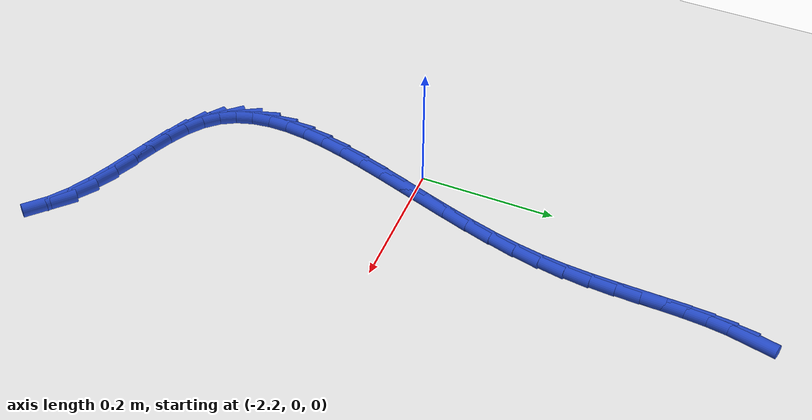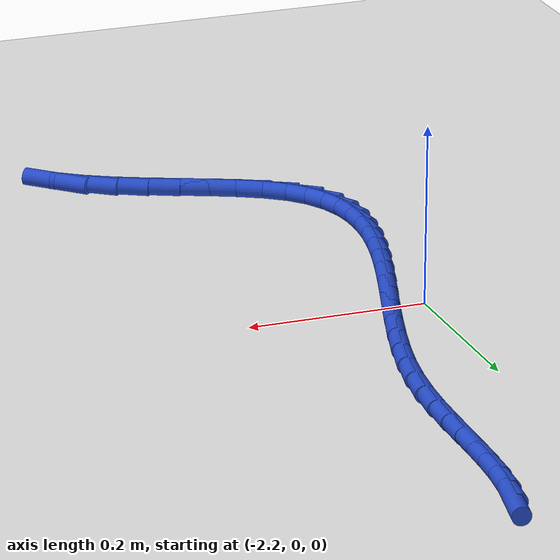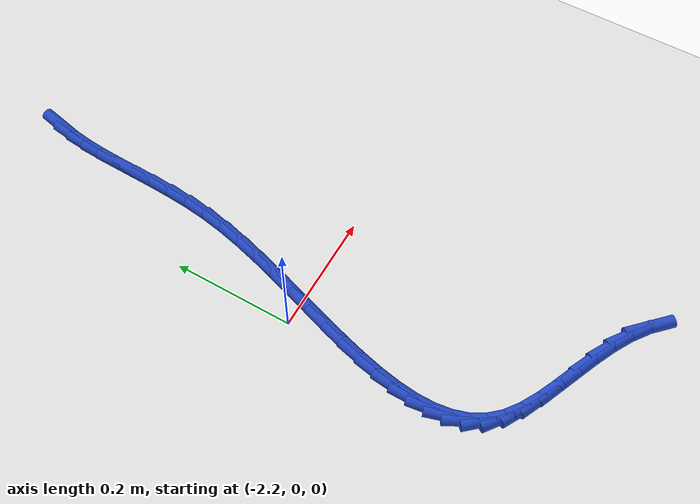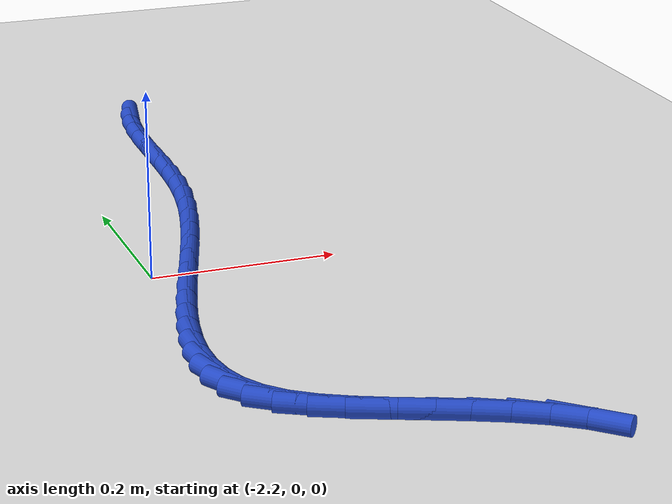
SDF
<sdf version="1.6">
 <world name="default">
  <model name="ground_plane">
   <static>1</static>
   <link name="link">
    <collision name="collision">
     <geometry><plane><normal>0 0 1</normal><size>100 100</size></plane></geometry>
     <surface><friction><ode><mu>100</mu><mu2>50</mu2></ode></friction></surface>
    </collision>
    <visual name="visual">
     <cast_shadows>0</cast_shadows>
     <geometry><plane><normal>0 0 1</normal><size>100 100</size></plane></geometry>
     <material>
      <script><uri>file://media/materials/scripts/gazebo.material</uri><name>Gazebo/WhiteGlow</name></script>
     </material>
    </visual>
   </link>
  </model>
  <model name="line">
   <link name="link_90">
    <pose>-2.079892184102288 0.5171115539165557 0.01 0 1.57 1.3632791009786671</pose>
    <collision name="collision">
     <geometry><cylinder><radius>0.01</radius><length>0.08</length></cylinder></geometry>
    </collision>
    <visual name="visual">
     <material>
      <script><name>Gazebo/Blue</name><uri>file://media/materials/scripts/gazebo.material</uri></script>
     </material>
     <geometry><cylinder><radius>0.01</radius><length>0.08</length></cylinder></geometry>
    </visual>
   </link>
   <link name="link_91">
    <pose>-2.086155965197611 0.48736169271048596 0.01 0 1.57 1.4418927126917094</pose>
    <collision name="collision">
     <geometry><cylinder><radius>0.01</radius><length>0.08</length></cylinder></geometry>
    </collision>
    <visual name="visual">
     <material>
      <script><name>Gazebo/Blue</name><uri>file://media/materials/scripts/gazebo.material</uri></script>
     </material>
     <geometry><cylinder><radius>0.01</radius><length>0.08</length></cylinder></geometry>
    </visual>
   </link>
   <link name="link_92">
    <pose>-2.0901623549415267 0.45645352225317914 0.01 0 1.57 1.498313127249006</pose>
    <collision name="collision">
     <geometry><cylinder><radius>0.01</radius><length>0.08</length></cylinder></geometry>
    </collision>
    <visual name="visual">
     <material>
      <script><name>Gazebo/Blue</name><uri>file://media/materials/scripts/gazebo.material</uri></script>
     </material>
     <geometry><cylinder><radius>0.01</radius><length>0.08</length></cylinder></geometry>
    </visual>
   </link>
   <link name="link_93">
    <pose>-2.092485920995472 0.4244530663168874 0.01 0 1.57 1.5340151382224891</pose>
    <collision name="collision">
     <geometry><cylinder><radius>0.01</radius><length>0.08</length></cylinder></geometry>
    </collision>
    <visual name="visual">
     <material>
      <script><name>Gazebo/Blue</name><uri>file://media/materials/scripts/gazebo.material</uri></script>
     </material>
     <geometry><cylinder><radius>0.01</radius><length>0.08</length></cylinder></geometry>
    </visual>
   </link>
   <link name="link_94">
    <pose>-2.0937012310208813 0.3914263486738614 0.01 0 1.57 1.550743624757005</pose>
    <collision name="collision">
     <geometry><cylinder><radius>0.01</radius><length>0.08</length></cylinder></geometry>
    </collision>
    <visual name="visual">
     <material>
      <script><name>Gazebo/Blue</name><uri>file://media/materials/scripts/gazebo.material</uri></script>
     </material>
     <geometry><cylinder><radius>0.01</radius><length>0.08</length></cylinder></geometry>
    </visual>
   </link>
   <link name="link_95">
    <pose>-2.0943828526791917 0.3574393930963523 0.01 0 1.57 1.5500860794587448</pose>
    <collision name="collision">
     <geometry><cylinder><radius>0.01</radius><length>0.08</length></cylinder></geometry>
    </collision>
    <visual name="visual">
     <material>
      <script><name>Gazebo/Blue</name><uri>file://media/materials/scripts/gazebo.material</uri></script>
     </material>
     <geometry><cylinder><radius>0.01</radius><length>0.08</length></cylinder></geometry>
    </visual>
   </link>
   <link name="link_96">
    <pose>-2.0951053536318374 0.3225582233566119 0.01 0 1.57 1.53334613595057</pose>
    <collision name="collision">
     <geometry><cylinder><radius>0.01</radius><length>0.08</length></cylinder></geometry>
    </collision>
    <visual name="visual">
     <material>
      <script><name>Gazebo/Blue</name><uri>file://media/materials/scripts/gazebo.material</uri></script>
     </material>
     <geometry><cylinder><radius>0.01</radius><length>0.08</length></cylinder></geometry>
    </visual>
   </link>
   <link name="link_97">
    <pose>-2.096443301540254 0.28684886322689085 0.01 0 1.57 1.501593691564026</pose>
    <collision name="collision">
     <geometry><cylinder><radius>0.01</radius><length>0.08</length></cylinder></geometry>
    </collision>
    <visual name="visual">
     <material>
      <script><name>Gazebo/Blue</name><uri>file://media/materials/scripts/gazebo.material</uri></script>
     </material>
     <geometry><cylinder><radius>0.01</radius><length>0.08</length></cylinder></geometry>
    </visual>
   </link>
   <link name="link_98">
    <pose>-2.0989712640658773 0.2503773364794404 0.01 0 1.57 1.4558143780064379</pose>
    <collision name="collision">
     <geometry><cylinder><radius>0.01</radius><length>0.08</length></cylinder></geometry>
    </collision>
    <visual name="visual">
     <material>
      <script><name>Gazebo/Blue</name><uri>file://media/materials/scripts/gazebo.material</uri></script>
     </material>
     <geometry><cylinder><radius>0.01</radius><length>0.08</length></cylinder></geometry>
    </visual>
   </link>
   <link name="link_99">
    <pose>-2.1032638088701434 0.21320966688651233 0.01 0 1.57 1.3987699374190992</pose>
    <collision name="collision">
     <geometry><cylinder><radius>0.01</radius><length>0.08</length></cylinder></geometry>
    </collision>
    <visual name="visual">
     <material>
      <script><name>Gazebo/Blue</name><uri>file://media/materials/scripts/gazebo.material</uri></script>
     </material>
     <geometry><cylinder><radius>0.01</radius><length>0.08</length></cylinder></geometry>
    </visual>
   </link>
   <link name="link_100">
    <pose>-2.109829373528053 0.17542086333916065 0.01 0 1.57 1.3469061234210413</pose>
    <collision name="collision">
     <geometry><cylinder><radius>0.01</radius><length>0.08</length></cylinder></geometry>
    </collision>
    <visual name="visual">
     <material>
      <script><name>Gazebo/Blue</name><uri>file://media/materials/scripts/gazebo.material</uri></script>
     </material>
     <geometry><cylinder><radius>0.01</radius><length>0.08</length></cylinder></geometry>
    </visual>
   </link>
   <link name="link_101">
    <pose>-2.1185388070807027 0.1371725641135406 0.01 0 1.57 1.3077334688937876</pose>
    <collision name="collision">
     <geometry><cylinder><radius>0.01</radius><length>0.08</length></cylinder></geometry>
    </collision>
    <visual name="visual">
     <material>
      <script><name>Gazebo/Blue</name><uri>file://media/materials/scripts/gazebo.material</uri></script>
     </material>
     <geometry><cylinder><radius>0.01</radius><length>0.08</length></cylinder></geometry>
    </visual>
   </link>
   <link name="link_102">
    <pose>-2.128906387812486 0.0986748548837087 0.01 0 1.57 1.2799312138887364</pose>
    <collision name="collision">
     <geometry><cylinder><radius>0.01</radius><length>0.08</length></cylinder></geometry>
    </collision>
    <visual name="visual">
     <material>
      <script><name>Gazebo/Blue</name><uri>file://media/materials/scripts/gazebo.material</uri></script>
     </material>
     <geometry><cylinder><radius>0.01</radius><length>0.08</length></cylinder></geometry>
    </visual>
   </link>
   <link name="link_103">
    <pose>-2.1404424896846677 0.0601383518055184 0.01 0 1.57 1.2625529457720432</pose>
    <collision name="collision">
     <geometry><cylinder><radius>0.01</radius><length>0.08</length></cylinder></geometry>
    </collision>
    <visual name="visual">
     <material>
      <script><name>Gazebo/Blue</name><uri>file://media/materials/scripts/gazebo.material</uri></script>
     </material>
     <geometry><cylinder><radius>0.01</radius><length>0.08</length></cylinder></geometry>
    </visual>
   </link>
   <link name="link_104">
    <pose>-2.1526574866585095 0.021773671034823586 0.01 0 1.57 1.2551354331730136</pose>
    <collision name="collision">
     <geometry><cylinder><radius>0.01</radius><length>0.08</length></cylinder></geometry>
    </collision>
    <visual name="visual">
     <material>
      <script><name>Gazebo/Blue</name><uri>file://media/materials/scripts/gazebo.material</uri></script>
     </material>
     <geometry><cylinder><radius>0.01</radius><length>0.08</length></cylinder></geometry>
    </visual>
   </link>
   <link name="link_105">
    <pose>-2.1650617526952765 -0.01620857127252186 0.01 0 1.57 1.2577157711481741</pose>
    <collision name="collision">
     <geometry><cylinder><radius>0.01</radius><length>0.08</length></cylinder></geometry>
    </collision>
    <visual name="visual">
     <material>
      <script><name>Gazebo/Blue</name><uri>file://media/materials/scripts/gazebo.material</uri></script>
     </material>
     <geometry><cylinder><radius>0.01</radius><length>0.08</length></cylinder></geometry>
    </visual>
   </link>
   <link name="link_106">
    <pose>-2.177165661756231 -0.05359775896066492 0.01 0 1.57 1.2708786647966608</pose>
    <collision name="collision">
     <geometry><cylinder><radius>0.01</radius><length>0.08</length></cylinder></geometry>
    </collision>
    <visual name="visual">
     <material>
      <script><name>Gazebo/Blue</name><uri>file://media/materials/scripts/gazebo.material</uri></script>
     </material>
     <geometry><cylinder><radius>0.01</radius><length>0.08</length></cylinder></geometry>
    </visual>
   </link>
   <link name="link_107">
    <pose>-2.1884795878026386 -0.09018327587375 0.01 0 1.57 1.2958498728026093</pose>
    <collision name="collision">
     <geometry><cylinder><radius>0.01</radius><length>0.08</length></cylinder></geometry>
    </collision>
    <visual name="visual">
     <material>
      <script><name>Gazebo/Blue</name><uri>file://media/materials/scripts/gazebo.material</uri></script>
     </material>
     <geometry><cylinder><radius>0.01</radius><length>0.08</length></cylinder></geometry>
    </visual>
   </link>
   <link name="link_108">
    <pose>-2.19851390479576 -0.12575450585592413 0.01 0 1.57 1.3346467912752662</pose>
    <collision name="collision">
     <geometry><cylinder><radius>0.01</radius><length>0.08</length></cylinder></geometry>
    </collision>
    <visual name="visual">
     <material>
      <script><name>Gazebo/Blue</name><uri>file://media/materials/scripts/gazebo.material</uri></script>
     </material>
     <geometry><cylinder><radius>0.01</radius><length>0.08</length></cylinder></geometry>
    </visual>
   </link>
   <link name="link_109">
    <pose>-2.2067789866968606 -0.16010083275133333 0.01 0 1.57 1.3902829541110284</pose>
    <collision name="collision">
     <geometry><cylinder><radius>0.01</radius><length>0.08</length></cylinder></geometry>
    </collision>
    <visual name="visual">
     <material>
      <script><name>Gazebo/Blue</name><uri>file://media/materials/scripts/gazebo.material</uri></script>
     </material>
     <geometry><cylinder><radius>0.01</radius><length>0.08</length></cylinder></geometry>
    </visual>
   </link>
   <link name="link_110">
    <pose>-2.212785207467204 -0.19301164040412386 0.01 0 1.57 1.4669724426384836</pose>
    <collision name="collision">
     <geometry><cylinder><radius>0.01</radius><length>0.08</length></cylinder></geometry>
    </collision>
    <visual name="visual">
     <material>
      <script><name>Gazebo/Blue</name><uri>file://media/materials/scripts/gazebo.material</uri></script>
     </material>
     <geometry><cylinder><radius>0.01</radius><length>0.08</length></cylinder></geometry>
    </visual>
   </link>
   <link name="link_111">
    <pose>-2.2160429410680527 -0.2242763126584417 0.01 0 1.57 1.570129146346911</pose>
    <collision name="collision">
     <geometry><cylinder><radius>0.01</radius><length>0.08</length></cylinder></geometry>
    </collision>
    <visual name="visual">
     <material>
      <script><name>Gazebo/Blue</name><uri>file://media/materials/scripts/gazebo.material</uri></script>
     </material>
     <geometry><cylinder><radius>0.01</radius><length>0.08</length></cylinder></geometry>
    </visual>
   </link>
   <link name="link_112">
    <pose>-2.216062561460671 -0.2536842333584338 0.01 0 1.57 -1.435991812527895</pose>
    <collision name="collision">
     <geometry><cylinder><radius>0.01</radius><length>0.08</length></cylinder></geometry>
    </collision>
    <visual name="visual">
     <material>
      <script><name>Gazebo/Blue</name><uri>file://media/materials/scripts/gazebo.material</uri></script>
     </material>
     <geometry><cylinder><radius>0.01</radius><length>0.08</length></cylinder></geometry>
    </visual>
   </link>
   <link name="link_113">
    <pose>-2.2123544426063213 -0.28102478634824474 0.01 0 1.57 -1.2645188163280245</pose>
    <collision name="collision">
     <geometry><cylinder><radius>0.01</radius><length>0.08</length></cylinder></geometry>
    </collision>
    <visual name="visual">
     <material>
      <script><name>Gazebo/Blue</name><uri>file://media/materials/scripts/gazebo.material</uri></script>
     </material>
     <geometry><cylinder><radius>0.01</radius><length>0.08</length></cylinder></geometry>
    </visual>
   </link>
   <link name="link_114">
    <pose>-2.2044289584662686 -0.3060873554720215 0.01 0 1.57 -1.0606097852818104</pose>
    <collision name="collision">
     <geometry><cylinder><radius>0.01</radius><length>0.08</length></cylinder></geometry>
    </collision>
    <visual name="visual">
     <material>
      <script><name>Gazebo/Blue</name><uri>file://media/materials/scripts/gazebo.material</uri></script>
     </material>
     <geometry><cylinder><radius>0.01</radius><length>0.08</length></cylinder></geometry>
    </visual>
   </link>
   <link name="link_115">
    <pose>-2.1917964830017764 -0.32866132457391006 0.01 0 1.57 -0.8396185232319554</pose>
    <collision name="collision">
     <geometry><cylinder><radius>0.01</radius><length>0.08</length></cylinder></geometry>
    </collision>
    <visual name="visual">
     <material>
      <script><name>Gazebo/Blue</name><uri>file://media/materials/scripts/gazebo.material</uri></script>
     </material>
     <geometry><cylinder><radius>0.01</radius><length>0.08</length></cylinder></geometry>
    </visual>
   </link>
   <link name="link_116">
    <pose>-2.173967802128631 -0.3485363179047365 0.01 0 1.57 -0.6393928392126387</pose>
    <collision name="collision">
     <geometry><cylinder><radius>0.01</radius><length>0.08</length></cylinder></geometry>
    </collision>
    <visual name="visual">
     <material>
      <script><name>Gazebo/Blue</name><uri>file://media/materials/scripts/gazebo.material</uri></script>
     </material>
     <geometry><cylinder><radius>0.01</radius><length>0.08</length></cylinder></geometry>
    </visual>
   </link>
   <link name="link_117">
    <pose>-2.1508451005849127 -0.3657303705859582 0.01 0 1.57 -0.5061208700089077</pose>
    <collision name="collision">
     <geometry><cylinder><radius>0.01</radius><length>0.08</length></cylinder></geometry>
    </collision>
    <visual name="visual">
     <material>
      <script><name>Gazebo/Blue</name><uri>file://media/materials/scripts/gazebo.material</uri></script>
     </material>
     <geometry><cylinder><radius>0.01</radius><length>0.08</length></cylinder></geometry>
    </visual>
   </link>
   <link name="link_118">
    <pose>-2.123450041634043 -0.3809148182858456 0.01 0 1.57 -0.4299633692026011</pose>
    <collision name="collision">
     <geometry><cylinder><radius>0.01</radius><length>0.08</length></cylinder></geometry>
    </collision>
    <visual name="visual">
     <material>
      <script><name>Gazebo/Blue</name><uri>file://media/materials/scripts/gazebo.material</uri></script>
     </material>
     <geometry><cylinder><radius>0.01</radius><length>0.08</length></cylinder></geometry>
    </visual>
   </link>
   <link name="link_119">
    <pose>-2.093003155403199 -0.39487705055659356 0.01 0 1.57 -0.3968526791243273</pose>
    <collision name="collision">
     <geometry><cylinder><radius>0.01</radius><length>0.08</length></cylinder></geometry>
    </collision>
    <visual name="visual">
     <material>
      <script><name>Gazebo/Blue</name><uri>file://media/materials/scripts/gazebo.material</uri></script>
     </material>
     <geometry><cylinder><radius>0.01</radius><length>0.08</length></cylinder></geometry>
    </visual>
   </link>
   <link name="link_120">
    <pose>-2.0607249720195613 -0.40840445695039596 0.01 0 1.57 -0.39934837754821556</pose>
    <collision name="collision">
     <geometry><cylinder><radius>0.01</radius><length>0.08</length></cylinder></geometry>
    </collision>
    <visual name="visual">
     <material>
      <script><name>Gazebo/Blue</name><uri>file://media/materials/scripts/gazebo.material</uri></script>
     </material>
     <geometry><cylinder><radius>0.01</radius><length>0.08</length></cylinder></geometry>
    </visual>
   </link>
   <link name="link_121">
    <pose>-2.0278360216103053 -0.42228442701944763 0.01 0 1.57 -0.4355149400563301</pose>
    <collision name="collision">
     <geometry><cylinder><radius>0.01</radius><length>0.08</length></cylinder></geometry>
    </collision>
    <visual name="visual">
     <material>
      <script><name>Gazebo/Blue</name><uri>file://media/materials/scripts/gazebo.material</uri></script>
     </material>
     <geometry><cylinder><radius>0.01</radius><length>0.08</length></cylinder></geometry>
    </visual>
   </link>
   <link name="link_122">
    <pose>-1.9955568343026109 -0.4373043503159433 0.01 0 1.57 -0.5078815108859556</pose>
    <collision name="collision">
     <geometry><cylinder><radius>0.01</radius><length>0.08</length></cylinder></geometry>
    </collision>
    <visual name="visual">
     <material>
      <script><name>Gazebo/Blue</name><uri>file://media/materials/scripts/gazebo.material</uri></script>
     </material>
     <geometry><cylinder><radius>0.01</radius><length>0.08</length></cylinder></geometry>
    </visual>
   </link>
   <link name="link_123">
    <pose>-1.9651079402236558 -0.45425161639207734 0.01 0 1.57 -0.6224662837260744</pose>
    <collision name="collision">
     <geometry><cylinder><radius>0.01</radius><length>0.08</length></cylinder></geometry>
    </collision>
    <visual name="visual">
     <material>
      <script><name>Gazebo/Blue</name><uri>file://media/materials/scripts/gazebo.material</uri></script>
     </material>
     <geometry><cylinder><radius>0.01</radius><length>0.08</length></cylinder></geometry>
    </visual>
   </link>
   <link name="link_124">
    <pose>-1.9377098138607587 -0.47391357618367835 0.01 0 1.57 -0.7719172909889845</pose>
    <collision name="collision">
     <geometry><cylinder><radius>0.01</radius><length>0.08</length></cylinder></geometry>
    </collision>
    <visual name="visual">
     <material>
      <script><name>Gazebo/Blue</name><uri>file://media/materials/scripts/gazebo.material</uri></script>
     </material>
     <geometry><cylinder><radius>0.01</radius><length>0.08</length></cylinder></geometry>
    </visual>
   </link>
  </model>
 </world>
</sdf>
